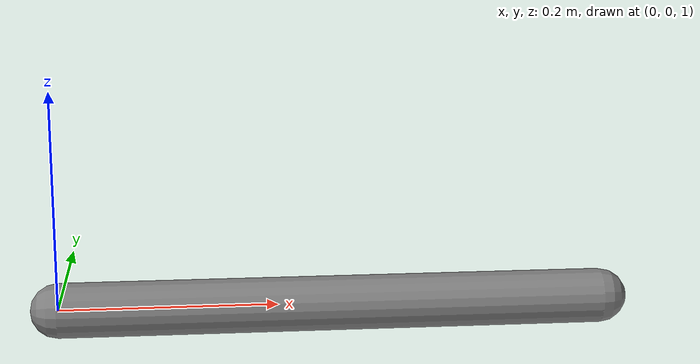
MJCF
<!-- BROKEN (debugging clinic, case 10): the servo reaches its target and then oscillates around it forever. -->
<mujoco model="undamped_servo">
  <compiler angle="radian" autolimits="true"/>
  <option timestep="0.002" integrator="implicitfast" gravity="0 0 0"/>
  <worldbody>
    <light pos="0 -1 2" dir="0 0.5 -1"/>
    <body name="arm" pos="0 0 1">
      <joint name="shoulder" type="hinge" axis="0 -1 0"/>
      <geom type="capsule" fromto="0 0 0 0.5 0 0" size="0.025" mass="2"/>
    </body>
  </worldbody>
  <actuator>
    <position name="shoulder" joint="shoulder" kp="200"/>
  </actuator>
</mujoco>
